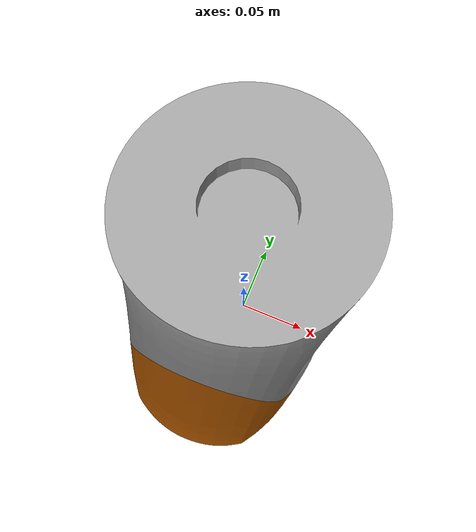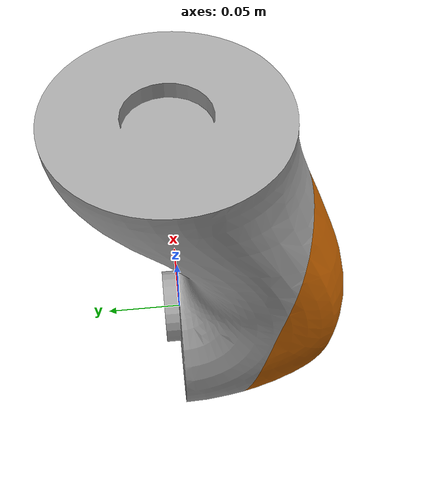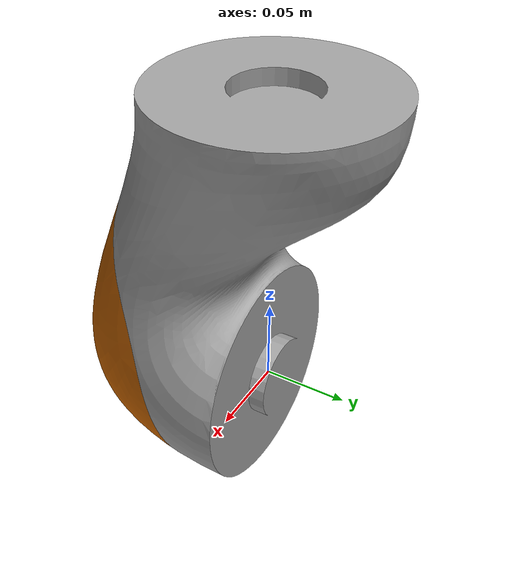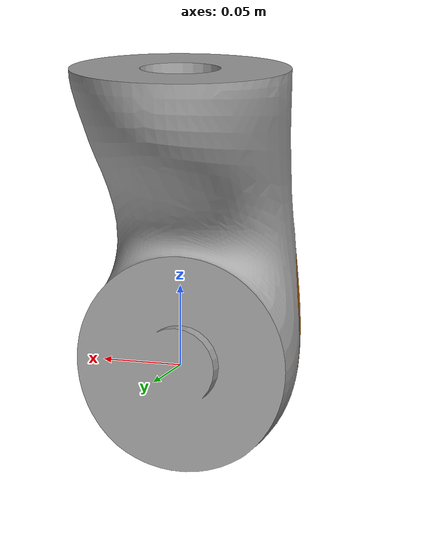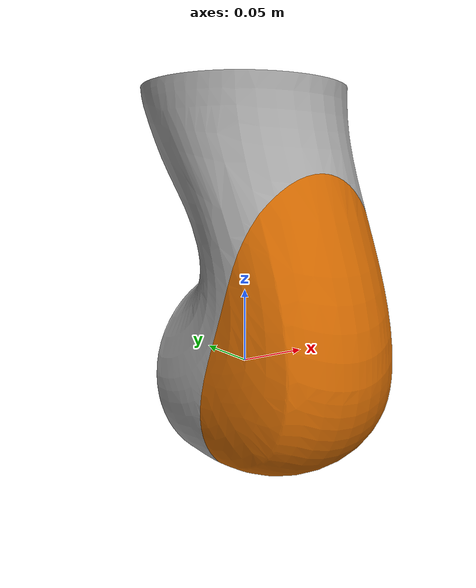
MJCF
<mujoco model="link_4">
  <default>
    <default class="visual">
      <geom group="2" type="mesh" contype="0" conaffinity="0"/>
    </default>
    <default class="collision">
      <geom group="3" type="mesh"/>
    </default>
  </default>
  <asset>
    <material name="gray" specular="0.5" shininess="0.25" rgba="0.640000 0.640000 0.640000 1.000000"/>
    <material name="orange.001" specular="0.5" shininess="0.25" rgba="0.800000 0.398431 0.000000 1.000000"/>
    <mesh file="link_4_0.obj"/>
    <mesh file="link_4_1.obj"/>
  </asset>
  <worldbody>
    <body name="link_4">
      <geom mesh="link_4_0" material="orange.001" class="visual"/>
      <geom mesh="link_4_1" material="gray" class="visual"/>
      <geom mesh="link_4_0" class="collision"/>
      <geom mesh="link_4_1" class="collision"/>
    </body>
  </worldbody>
</mujoco>
